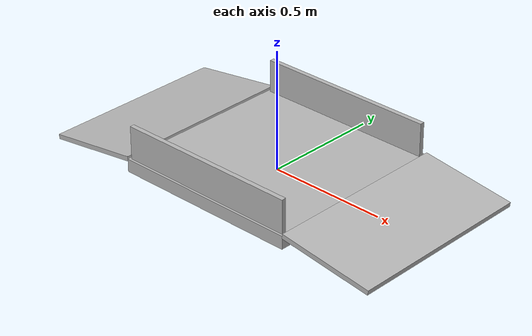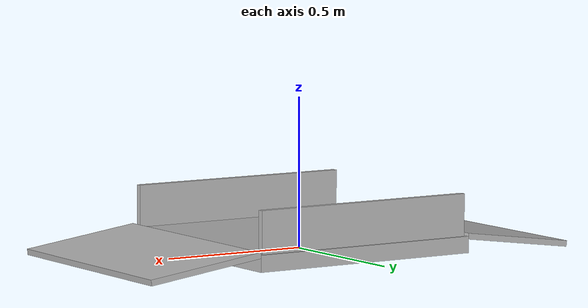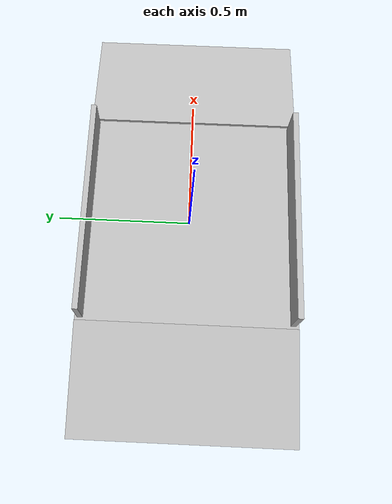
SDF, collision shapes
<?xml version="1.0" ?>
<sdf version="1.9">
  <model name="bridge_crossing">
    <static>true</static>
    <link name="link">
      <visual name="deck_visual">
        <pose>0 0 0 0 0 0</pose>
        <geometry><mesh><uri>meshes/bridge_deck.obj</uri></mesh></geometry>
        </visual>
      <visual name="markings_visual">
        <pose>0 0 0 0 0 0</pose>
        <geometry><mesh><uri>meshes/bridge_markings.obj</uri></mesh></geometry>
        </visual>
      <visual name="railings_visual">
        <pose>0 0 0 0 0 0</pose>
        <geometry><mesh><uri>meshes/bridge_railings.obj</uri></mesh></geometry>
        </visual>
      <collision name="deck_flat">
        <pose>0 0 0.0275 0 0 0</pose>
        <geometry><box><size>0.8 0.8 0.055</size></box></geometry>
      </collision>
      <collision name="ramp_left">
        <pose>-0.6 0 0.0275 0 -0.1367 0</pose>
        <geometry><box><size>0.404 0.8 0.02</size></box></geometry>
      </collision>
      <collision name="ramp_right">
        <pose>0.6 0 0.0275 0 0.1367 0</pose>
        <geometry><box><size>0.404 0.8 0.02</size></box></geometry>
      </collision>
      <collision name="rail_north">
        <pose>0 0.38 0.125 0 0 0</pose>
        <geometry><box><size>0.78 0.02 0.14</size></box></geometry>
      </collision>
      <collision name="rail_south">
        <pose>0 -0.38 0.125 0 0 0</pose>
        <geometry><box><size>0.78 0.02 0.14</size></box></geometry>
      </collision>
    </link>
  </model>
</sdf>
